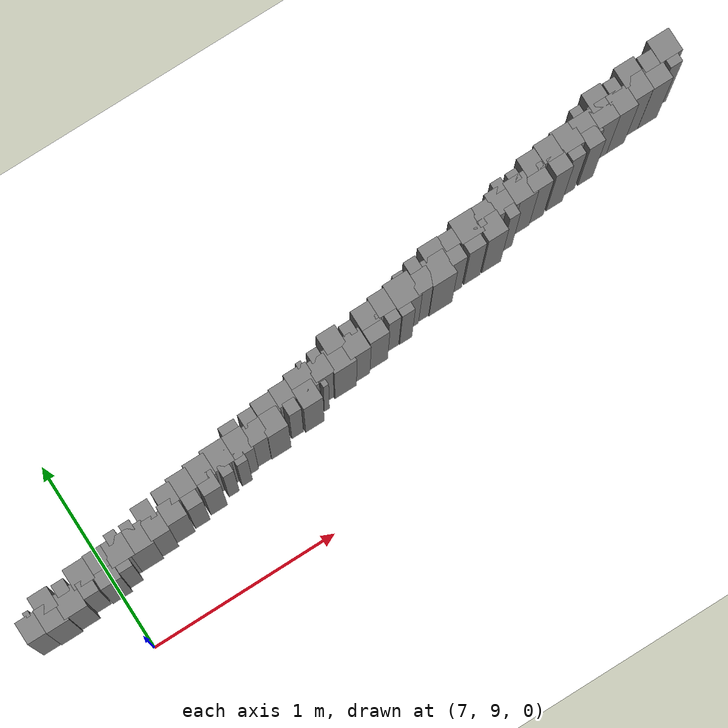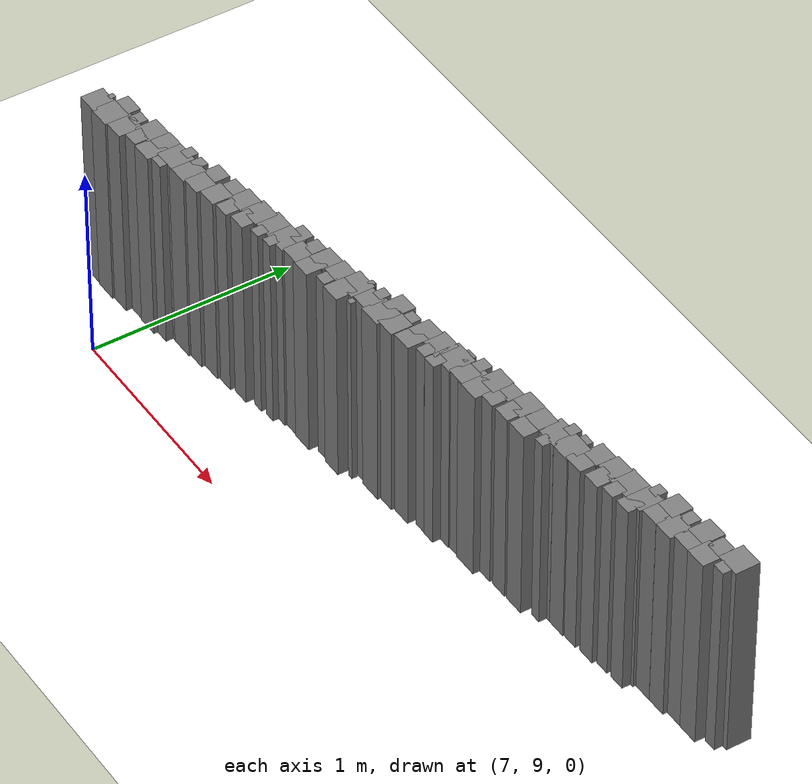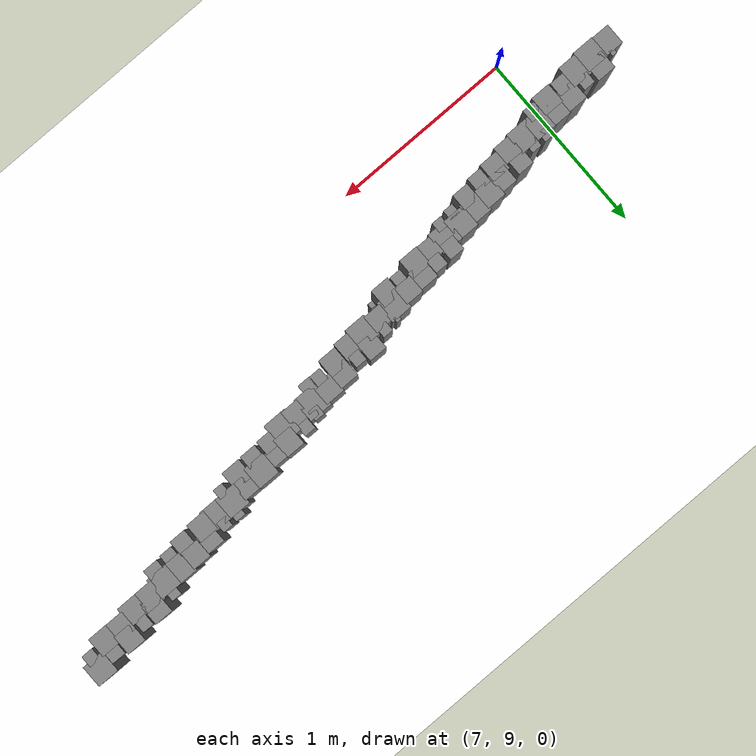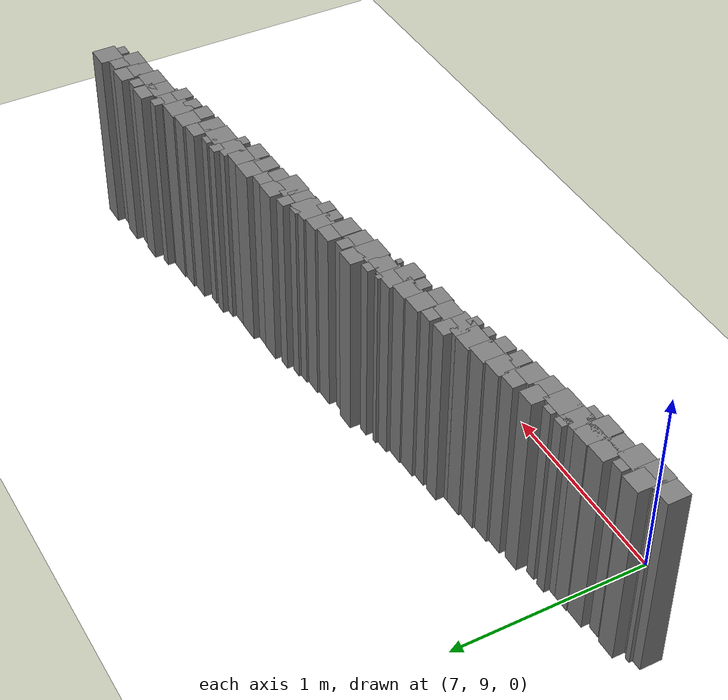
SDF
<sdf version="1.6">
 <world name="default">
  <model name="group_81">
   <pose>6.60 9.30 0.5 0 0 0</pose>
   <static>true</static>
   <link name="link">
    <collision name="collision">
     <geometry><box><size>0.1114520921337714 0.1114520921337714 1</size></box></geometry>
    </collision>
    <visual name="visual">
     <geometry><box><size>0.1114520921337714 0.1114520921337714 1</size></box></geometry>
     <material><ambient>0.5 0.5 0.5 1</ambient></material>
    </visual>
   </link>
  </model>
  <model name="group_82">
   <pose>6.61 9.36 0.5 0 0 0</pose>
   <static>true</static>
   <link name="link">
    <collision name="collision">
     <geometry><box><size>0.02814025255821355 0.02814025255821355 1</size></box></geometry>
    </collision>
    <visual name="visual">
     <geometry><box><size>0.02814025255821355 0.02814025255821355 1</size></box></geometry>
     <material><ambient>0.5 0.5 0.5 1</ambient></material>
    </visual>
   </link>
  </model>
  <model name="group_83">
   <pose>6.70 9.30 0.5 0 0 0</pose>
   <static>true</static>
   <link name="link">
    <collision name="collision">
     <geometry><box><size>0.11884310777185612 0.11884310777185612 1</size></box></geometry>
    </collision>
    <visual name="visual">
     <geometry><box><size>0.11884310777185612 0.11884310777185612 1</size></box></geometry>
     <material><ambient>0.5 0.5 0.5 1</ambient></material>
    </visual>
   </link>
  </model>
  <model name="group_84">
   <pose>6.70 9.37 0.5 0 0 0</pose>
   <static>true</static>
   <link name="link">
    <collision name="collision">
     <geometry><box><size>0.10288911944020827 0.10288911944020827 1</size></box></geometry>
    </collision>
    <visual name="visual">
     <geometry><box><size>0.10288911944020827 0.10288911944020827 1</size></box></geometry>
     <material><ambient>0.5 0.5 0.5 1</ambient></material>
    </visual>
   </link>
  </model>
  <model name="group_89">
   <pose>6.80 9.31 0.5 0 0 0</pose>
   <static>true</static>
   <link name="link">
    <collision name="collision">
     <geometry><box><size>0.12039171518391106 0.12039171518391106 1</size></box></geometry>
    </collision>
    <visual name="visual">
     <geometry><box><size>0.12039171518391106 0.12039171518391106 1</size></box></geometry>
     <material><ambient>0.5 0.5 0.5 1</ambient></material>
    </visual>
   </link>
  </model>
  <model name="group_90">
   <pose>6.80 9.38 0.5 0 0 0</pose>
   <static>true</static>
   <link name="link">
    <collision name="collision">
     <geometry><box><size>0.06413786030771819 0.06413786030771819 1</size></box></geometry>
    </collision>
    <visual name="visual">
     <geometry><box><size>0.06413786030771819 0.06413786030771819 1</size></box></geometry>
     <material><ambient>0.5 0.5 0.5 1</ambient></material>
    </visual>
   </link>
  </model>
  <model name="group_92">
   <pose>6.90 9.39 0.5 0 0 0</pose>
   <static>true</static>
   <link name="link">
    <collision name="collision">
     <geometry><box><size>0.10782127490802769 0.10782127490802769 1</size></box></geometry>
    </collision>
    <visual name="visual">
     <geometry><box><size>0.10782127490802769 0.10782127490802769 1</size></box></geometry>
     <material><ambient>0.5 0.5 0.5 1</ambient></material>
    </visual>
   </link>
  </model>
  <model name="group_95">
   <pose>6.90 9.32 0.5 0 0 0</pose>
   <static>true</static>
   <link name="link">
    <collision name="collision">
     <geometry><box><size>0.07960863723841166 0.07960863723841166 1</size></box></geometry>
    </collision>
    <visual name="visual">
     <geometry><box><size>0.07960863723841166 0.07960863723841166 1</size></box></geometry>
     <material><ambient>0.5 0.5 0.5 1</ambient></material>
    </visual>
   </link>
  </model>
  <model name="group_97">
   <pose>7.00 9.33 0.5 0 0 0</pose>
   <static>true</static>
   <link name="link">
    <collision name="collision">
     <geometry><box><size>0.10782127490802607 0.10782127490802607 1</size></box></geometry>
    </collision>
    <visual name="visual">
     <geometry><box><size>0.10782127490802607 0.10782127490802607 1</size></box></geometry>
     <material><ambient>0.5 0.5 0.5 1</ambient></material>
    </visual>
   </link>
  </model>
  <model name="group_98">
   <pose>7.00 9.40 0.5 0 0 0</pose>
   <static>true</static>
   <link name="link">
    <collision name="collision">
     <geometry><box><size>0.0983825120287442 0.0983825120287442 1</size></box></geometry>
    </collision>
    <visual name="visual">
     <geometry><box><size>0.0983825120287442 0.0983825120287442 1</size></box></geometry>
     <material><ambient>0.5 0.5 0.5 1</ambient></material>
    </visual>
   </link>
  </model>
  <model name="group_100">
   <pose>7.10 9.39 0.5 0 0 0</pose>
   <static>true</static>
   <link name="link">
    <collision name="collision">
     <geometry><box><size>0.11898060602917175 0.11898060602917175 1</size></box></geometry>
    </collision>
    <visual name="visual">
     <geometry><box><size>0.11898060602917175 0.11898060602917175 1</size></box></geometry>
     <material><ambient>0.5 0.5 0.5 1</ambient></material>
    </visual>
   </link>
  </model>
  <model name="group_103">
   <pose>7.09 9.33 0.5 0 0 0</pose>
   <static>true</static>
   <link name="link">
    <collision name="collision">
     <geometry><box><size>0.07012024655144619 0.07012024655144619 1</size></box></geometry>
    </collision>
    <visual name="visual">
     <geometry><box><size>0.07012024655144619 0.07012024655144619 1</size></box></geometry>
     <material><ambient>0.5 0.5 0.5 1</ambient></material>
    </visual>
   </link>
  </model>
  <model name="group_104">
   <pose>7.11 9.45 0.5 0 0 0</pose>
   <static>true</static>
   <link name="link">
    <collision name="collision">
     <geometry><box><size>0.0562805051164271 0.0562805051164271 1</size></box></geometry>
    </collision>
    <visual name="visual">
     <geometry><box><size>0.0562805051164271 0.0562805051164271 1</size></box></geometry>
     <material><ambient>0.5 0.5 0.5 1</ambient></material>
    </visual>
   </link>
  </model>
  <model name="group_105">
   <pose>7.16 9.33 0.5 0 0 0</pose>
   <static>true</static>
   <link name="link">
    <collision name="collision"><geometry><box><size>0.0 0.0 1</size></box></geometry></collision>
    <visual name="visual">
     <geometry><box><size>0.0 0.0 1</size></box></geometry>
     <material><ambient>0.5 0.5 0.5 1</ambient></material>
    </visual>
   </link>
  </model>
  <model name="group_106">
   <pose>7.20 9.39 0.5 0 0 0</pose>
   <static>true</static>
   <link name="link">
    <collision name="collision">
     <geometry><box><size>0.11941295585761501 0.11941295585761501 1</size></box></geometry>
    </collision>
    <visual name="visual">
     <geometry><box><size>0.11941295585761501 0.11941295585761501 1</size></box></geometry>
     <material><ambient>0.5 0.5 0.5 1</ambient></material>
    </visual>
   </link>
  </model>
  <model name="group_107">
   <pose>7.19 9.45 0.5 0 0 0</pose>
   <static>true</static>
   <link name="link">
    <collision name="collision">
     <geometry><box><size>0.0562805051164271 0.0562805051164271 1</size></box></geometry>
    </collision>
    <visual name="visual">
     <geometry><box><size>0.0562805051164271 0.0562805051164271 1</size></box></geometry>
     <material><ambient>0.5 0.5 0.5 1</ambient></material>
    </visual>
   </link>
  </model>
  <model name="group_110">
   <pose>7.29 9.47 0.5 0 0 0</pose>
   <static>true</static>
   <link name="link">
    <collision name="collision">
     <geometry><box><size>0.09070112511455337 0.09070112511455337 1</size></box></geometry>
    </collision>
    <visual name="visual">
     <geometry><box><size>0.09070112511455337 0.09070112511455337 1</size></box></geometry>
     <material><ambient>0.5 0.5 0.5 1</ambient></material>
    </visual>
   </link>
  </model>
  <model name="group_113">
   <pose>7.30 9.39 0.5 0 0 0</pose>
   <static>true</static>
   <link name="link">
    <collision name="collision">
     <geometry><box><size>0.09919226406566706 0.09919226406566706 1</size></box></geometry>
    </collision>
    <visual name="visual">
     <geometry><box><size>0.09919226406566706 0.09919226406566706 1</size></box></geometry>
     <material><ambient>0.5 0.5 0.5 1</ambient></material>
    </visual>
   </link>
  </model>
  <model name="group_114">
   <pose>7.40 9.41 0.5 0 0 0</pose>
   <static>true</static>
   <link name="link">
    <collision name="collision">
     <geometry><box><size>0.10297681291020339 0.10297681291020339 1</size></box></geometry>
    </collision>
    <visual name="visual">
     <geometry><box><size>0.10297681291020339 0.10297681291020339 1</size></box></geometry>
     <material><ambient>0.5 0.5 0.5 1</ambient></material>
    </visual>
   </link>
  </model>
  <model name="group_115">
   <pose>7.41 9.48 0.5 0 0 0</pose>
   <static>true</static>
   <link name="link">
    <collision name="collision">
     <geometry><box><size>0.09714779415188261 0.09714779415188261 1</size></box></geometry>
    </collision>
    <visual name="visual">
     <geometry><box><size>0.09714779415188261 0.09714779415188261 1</size></box></geometry>
     <material><ambient>0.5 0.5 0.5 1</ambient></material>
    </visual>
   </link>
  </model>
  <model name="group_118">
   <pose>7.50 9.49 0.5 0 0 0</pose>
   <static>true</static>
   <link name="link">
    <collision name="collision">
     <geometry><box><size>0.1064746104697804 0.1064746104697804 1</size></box></geometry>
    </collision>
    <visual name="visual">
     <geometry><box><size>0.1064746104697804 0.1064746104697804 1</size></box></geometry>
     <material><ambient>0.5 0.5 0.5 1</ambient></material>
    </visual>
   </link>
  </model>
  <model name="group_121">
   <pose>7.50 9.41 0.5 0 0 0</pose>
   <static>true</static>
   <link name="link">
    <collision name="collision">
     <geometry><box><size>0.08105785199990259 0.08105785199990259 1</size></box></geometry>
    </collision>
    <visual name="visual">
     <geometry><box><size>0.08105785199990259 0.08105785199990259 1</size></box></geometry>
     <material><ambient>0.5 0.5 0.5 1</ambient></material>
    </visual>
   </link>
  </model>
  <model name="group_122">
   <pose>7.60 9.43 0.5 0 0 0</pose>
   <static>true</static>
   <link name="link">
    <collision name="collision">
     <geometry><box><size>0.09070112511455398 0.09070112511455398 1</size></box></geometry>
    </collision>
    <visual name="visual">
     <geometry><box><size>0.09070112511455398 0.09070112511455398 1</size></box></geometry>
     <material><ambient>0.5 0.5 0.5 1</ambient></material>
    </visual>
   </link>
  </model>
  <model name="group_123">
   <pose>7.60 9.50 0.5 0 0 0</pose>
   <static>true</static>
   <link name="link">
    <collision name="collision">
     <geometry><box><size>0.11145209213377237 0.11145209213377237 1</size></box></geometry>
    </collision>
    <visual name="visual">
     <geometry><box><size>0.11145209213377237 0.11145209213377237 1</size></box></geometry>
     <material><ambient>0.5 0.5 0.5 1</ambient></material>
    </visual>
   </link>
  </model>
  <model name="group_126">
   <pose>7.70 9.51 0.5 0 0 0</pose>
   <static>true</static>
   <link name="link">
    <collision name="collision">
     <geometry><box><size>0.1188431077718556 0.1188431077718556 1</size></box></geometry>
    </collision>
    <visual name="visual">
     <geometry><box><size>0.1188431077718556 0.1188431077718556 1</size></box></geometry>
     <material><ambient>0.5 0.5 0.5 1</ambient></material>
    </visual>
   </link>
  </model>
  <model name="group_128">
   <pose>7.70 9.44 0.5 0 0 0</pose>
   <static>true</static>
   <link name="link">
    <collision name="collision">
     <geometry><box><size>0.056280505116427 0.056280505116427 1</size></box></geometry>
    </collision>
    <visual name="visual">
     <geometry><box><size>0.056280505116427 0.056280505116427 1</size></box></geometry>
     <material><ambient>0.5 0.5 0.5 1</ambient></material>
    </visual>
   </link>
  </model>
  <model name="group_130">
   <pose>7.74 9.57 0.5 0 0 0</pose>
   <static>true</static>
   <link name="link">
    <collision name="collision"><geometry><box><size>0.0 0.0 1</size></box></geometry></collision>
    <visual name="visual">
     <geometry><box><size>0.0 0.0 1</size></box></geometry>
     <material><ambient>0.5 0.5 0.5 1</ambient></material>
    </visual>
   </link>
  </model>
  <model name="group_131">
   <pose>7.78 9.45 0.5 0 0 0</pose>
   <static>true</static>
   <link name="link">
    <collision name="collision">
     <geometry><box><size>0.056280505116428875 0.056280505116428875 1</size></box></geometry>
    </collision>
    <visual name="visual">
     <geometry><box><size>0.056280505116428875 0.056280505116428875 1</size></box></geometry>
     <material><ambient>0.5 0.5 0.5 1</ambient></material>
    </visual>
   </link>
  </model>
  <model name="group_132">
   <pose>7.80 9.51 0.5 0 0 0</pose>
   <static>true</static>
   <link name="link">
    <collision name="collision">
     <geometry><box><size>0.11941295585761733 0.11941295585761733 1</size></box></geometry>
    </collision>
    <visual name="visual">
     <geometry><box><size>0.11941295585761733 0.11941295585761733 1</size></box></geometry>
     <material><ambient>0.5 0.5 0.5 1</ambient></material>
    </visual>
   </link>
  </model>
  <model name="group_133">
   <pose>7.81 9.57 0.5 0 0 0</pose>
   <static>true</static>
   <link name="link">
    <collision name="collision">
     <geometry><box><size>0.08442075767464055 0.08442075767464055 1</size></box></geometry>
    </collision>
    <visual name="visual">
     <geometry><box><size>0.08442075767464055 0.08442075767464055 1</size></box></geometry>
     <material><ambient>0.5 0.5 0.5 1</ambient></material>
    </visual>
   </link>
  </model>
  <model name="group_136">
   <pose>7.90 9.51 0.5 0 0 0</pose>
   <static>true</static>
   <link name="link">
    <collision name="collision">
     <geometry><box><size>0.09919226406567094 0.09919226406567094 1</size></box></geometry>
    </collision>
    <visual name="visual">
     <geometry><box><size>0.09919226406567094 0.09919226406567094 1</size></box></geometry>
     <material><ambient>0.5 0.5 0.5 1</ambient></material>
    </visual>
   </link>
  </model>
  <model name="group_137">
   <pose>7.91 9.58 0.5 0 0 0</pose>
   <static>true</static>
   <link name="link">
    <collision name="collision">
     <geometry><box><size>0.0725609000916443 0.0725609000916443 1</size></box></geometry>
    </collision>
    <visual name="visual">
     <geometry><box><size>0.0725609000916443 0.0725609000916443 1</size></box></geometry>
     <material><ambient>0.5 0.5 0.5 1</ambient></material>
    </visual>
   </link>
  </model>
  <model name="group_140">
   <pose>7.99 9.51 0.5 0 0 0</pose>
   <static>true</static>
   <link name="link">
    <collision name="collision">
     <geometry><box><size>0.10782127490802769 0.10782127490802769 1</size></box></geometry>
    </collision>
    <visual name="visual">
     <geometry><box><size>0.10782127490802769 0.10782127490802769 1</size></box></geometry>
     <material><ambient>0.5 0.5 0.5 1</ambient></material>
    </visual>
   </link>
  </model>
  <model name="group_141">
   <pose>8.00 9.58 0.5 0 0 0</pose>
   <static>true</static>
   <link name="link">
    <collision name="collision">
     <geometry><box><size>0.10297681291020186 0.10297681291020186 1</size></box></geometry>
    </collision>
    <visual name="visual">
     <geometry><box><size>0.10297681291020186 0.10297681291020186 1</size></box></geometry>
     <material><ambient>0.5 0.5 0.5 1</ambient></material>
    </visual>
   </link>
  </model>
  <model name="group_144">
   <pose>8.10 9.52 0.5 0 0 0</pose>
   <static>true</static>
   <link name="link">
    <collision name="collision">
     <geometry><box><size>0.06413786030771833 0.06413786030771833 1</size></box></geometry>
    </collision>
    <visual name="visual">
     <geometry><box><size>0.06413786030771833 0.06413786030771833 1</size></box></geometry>
     <material><ambient>0.5 0.5 0.5 1</ambient></material>
    </visual>
   </link>
  </model>
  <model name="group_145">
   <pose>8.10 9.59 0.5 0 0 0</pose>
   <static>true</static>
   <link name="link">
    <collision name="collision">
     <geometry><box><size>0.0991922640656737 0.0991922640656737 1</size></box></geometry>
    </collision>
    <visual name="visual">
     <geometry><box><size>0.0991922640656737 0.0991922640656737 1</size></box></geometry>
     <material><ambient>0.5 0.5 0.5 1</ambient></material>
    </visual>
   </link>
  </model>
  <model name="group_148">
   <pose>8.19 9.53 0.5 0 0 0</pose>
   <static>true</static>
   <link name="link">
    <collision name="collision">
     <geometry><box><size>0.10288911944021224 0.10288911944021224 1</size></box></geometry>
    </collision>
    <visual name="visual">
     <geometry><box><size>0.10288911944021224 0.10288911944021224 1</size></box></geometry>
     <material><ambient>0.5 0.5 0.5 1</ambient></material>
    </visual>
   </link>
  </model>
  <model name="group_149">
   <pose>8.20 9.60 0.5 0 0 0</pose>
   <static>true</static>
   <link name="link">
    <collision name="collision">
     <geometry><box><size>0.11941295585761501 0.11941295585761501 1</size></box></geometry>
    </collision>
    <visual name="visual">
     <geometry><box><size>0.11941295585761501 0.11941295585761501 1</size></box></geometry>
     <material><ambient>0.5 0.5 0.5 1</ambient></material>
    </visual>
   </link>
  </model>
  <model name="group_152">
   <pose>8.23 9.66 0.5 0 0 0</pose>
   <static>true</static>
   <link name="link">
    <collision name="collision">
     <geometry><box><size>0.02814025255821345 0.02814025255821345 1</size></box></geometry>
    </collision>
    <visual name="visual">
     <geometry><box><size>0.02814025255821345 0.02814025255821345 1</size></box></geometry>
     <material><ambient>0.5 0.5 0.5 1</ambient></material>
    </visual>
   </link>
  </model>
  <model name="group_153">
   <pose>8.28 9.53 0.5 0 0 0</pose>
   <static>true</static>
   <link name="link">
    <collision name="collision">
     <geometry><box><size>0.02814025255821345 0.02814025255821345 1</size></box></geometry>
    </collision>
    <visual name="visual">
     <geometry><box><size>0.02814025255821345 0.02814025255821345 1</size></box></geometry>
     <material><ambient>0.5 0.5 0.5 1</ambient></material>
    </visual>
   </link>
  </model>
  <model name="group_154">
   <pose>8.30 9.60 0.5 0 0 0</pose>
   <static>true</static>
   <link name="link">
    <collision name="collision">
     <geometry><box><size>0.09919226406566595 0.09919226406566595 1</size></box></geometry>
    </collision>
    <visual name="visual">
     <geometry><box><size>0.09919226406566595 0.09919226406566595 1</size></box></geometry>
     <material><ambient>0.5 0.5 0.5 1</ambient></material>
    </visual>
   </link>
  </model>
  <model name="group_155">
   <pose>8.31 9.66 0.5 0 0 0</pose>
   <static>true</static>
   <link name="link">
    <collision name="collision">
     <geometry><box><size>0.0562805051164271 0.0562805051164271 1</size></box></geometry>
    </collision>
    <visual name="visual">
     <geometry><box><size>0.0562805051164271 0.0562805051164271 1</size></box></geometry>
     <material><ambient>0.5 0.5 0.5 1</ambient></material>
    </visual>
   </link>
  </model>
  <model name="group_158">
   <pose>8.40 9.60 0.5 0 0 0</pose>
   <static>true</static>
   <link name="link">
    <collision name="collision">
     <geometry><box><size>0.11941295585761537 0.11941295585761537 1</size></box></geometry>
    </collision>
    <visual name="visual">
     <geometry><box><size>0.11941295585761537 0.11941295585761537 1</size></box></geometry>
     <material><ambient>0.5 0.5 0.5 1</ambient></material>
    </visual>
   </link>
  </model>
  <model name="group_159">
   <pose>8.41 9.68 0.5 0 0 0</pose>
   <static>true</static>
   <link name="link">
    <collision name="collision">
     <geometry><box><size>0.10114093471775756 0.10114093471775756 1</size></box></geometry>
    </collision>
    <visual name="visual">
     <geometry><box><size>0.10114093471775756 0.10114093471775756 1</size></box></geometry>
     <material><ambient>0.5 0.5 0.5 1</ambient></material>
    </visual>
   </link>
  </model>
  <model name="group_162">
   <pose>8.49 9.61 0.5 0 0 0</pose>
   <static>true</static>
   <link name="link">
    <collision name="collision">
     <geometry><box><size>0.10881582679461872 0.10881582679461872 1</size></box></geometry>
    </collision>
    <visual name="visual">
     <geometry><box><size>0.10881582679461872 0.10881582679461872 1</size></box></geometry>
     <material><ambient>0.5 0.5 0.5 1</ambient></material>
    </visual>
   </link>
  </model>
  <model name="group_163">
   <pose>8.50 9.68 0.5 0 0 0</pose>
   <static>true</static>
   <link name="link">
    <collision name="collision">
     <geometry><box><size>0.0641378603077213 0.0641378603077213 1</size></box></geometry>
    </collision>
    <visual name="visual">
     <geometry><box><size>0.0641378603077213 0.0641378603077213 1</size></box></geometry>
     <material><ambient>0.5 0.5 0.5 1</ambient></material>
    </visual>
   </link>
  </model>
  <model name="group_166">
   <pose>8.60 9.62 0.5 0 0 0</pose>
   <static>true</static>
   <link name="link">
    <collision name="collision">
     <geometry><box><size>0.10297681291020215 0.10297681291020215 1</size></box></geometry>
    </collision>
    <visual name="visual">
     <geometry><box><size>0.10297681291020215 0.10297681291020215 1</size></box></geometry>
     <material><ambient>0.5 0.5 0.5 1</ambient></material>
    </visual>
   </link>
  </model>
  <model name="group_167">
   <pose>8.60 9.69 0.5 0 0 0</pose>
   <static>true</static>
   <link name="link">
    <collision name="collision">
     <geometry><box><size>0.1029768129102052 0.1029768129102052 1</size></box></geometry>
    </collision>
    <visual name="visual">
     <geometry><box><size>0.1029768129102052 0.1029768129102052 1</size></box></geometry>
     <material><ambient>0.5 0.5 0.5 1</ambient></material>
    </visual>
   </link>
  </model>
  <model name="group_170">
   <pose>8.70 9.63 0.5 0 0 0</pose>
   <static>true</static>
   <link name="link">
    <collision name="collision">
     <geometry><box><size>0.06413786030771658 0.06413786030771658 1</size></box></geometry>
    </collision>
    <visual name="visual">
     <geometry><box><size>0.06413786030771658 0.06413786030771658 1</size></box></geometry>
     <material><ambient>0.5 0.5 0.5 1</ambient></material>
    </visual>
   </link>
  </model>
  <model name="group_171">
   <pose>8.70 9.70 0.5 0 0 0</pose>
   <static>true</static>
   <link name="link">
    <collision name="collision">
     <geometry><box><size>0.10881582679461194 0.10881582679461194 1</size></box></geometry>
    </collision>
    <visual name="visual">
     <geometry><box><size>0.10881582679461194 0.10881582679461194 1</size></box></geometry>
     <material><ambient>0.5 0.5 0.5 1</ambient></material>
    </visual>
   </link>
  </model>
  <model name="group_174">
   <pose>8.77 9.63 0.5 0 0 0</pose>
   <static>true</static>
   <link name="link">
    <collision name="collision">
     <geometry><box><size>0.06837419248851186 0.06837419248851186 1</size></box></geometry>
    </collision>
    <visual name="visual">
     <geometry><box><size>0.06837419248851186 0.06837419248851186 1</size></box></geometry>
     <material><ambient>0.5 0.5 0.5 1</ambient></material>
    </visual>
   </link>
  </model>
  <model name="group_175">
   <pose>8.80 9.70 0.5 0 0 0</pose>
   <static>true</static>
   <link name="link">
    <collision name="collision">
     <geometry><box><size>0.13063877430325058 0.13063877430325058 1</size></box></geometry>
    </collision>
    <visual name="visual">
     <geometry><box><size>0.13063877430325058 0.13063877430325058 1</size></box></geometry>
     <material><ambient>0.5 0.5 0.5 1</ambient></material>
    </visual>
   </link>
  </model>
  <model name="group_176">
   <pose>8.82 9.75 0.5 0 0 0</pose>
   <static>true</static>
   <link name="link">
    <collision name="collision">
     <geometry><box><size>0.056280505116427 0.056280505116427 1</size></box></geometry>
    </collision>
    <visual name="visual">
     <geometry><box><size>0.056280505116427 0.056280505116427 1</size></box></geometry>
     <material><ambient>0.5 0.5 0.5 1</ambient></material>
    </visual>
   </link>
  </model>
  <model name="group_179">
   <pose>8.90 9.69 0.5 0 0 0</pose>
   <static>true</static>
   <link name="link">
    <collision name="collision">
     <geometry><box><size>0.09919226406566595 0.09919226406566595 1</size></box></geometry>
    </collision>
    <visual name="visual">
     <geometry><box><size>0.09919226406566595 0.09919226406566595 1</size></box></geometry>
     <material><ambient>0.5 0.5 0.5 1</ambient></material>
    </visual>
   </link>
  </model>
  <model name="group_180">
   <pose>8.90 9.77 0.5 0 0 0</pose>
   <static>true</static>
   <link name="link">
    <collision name="collision">
     <geometry><box><size>0.06413786030771658 0.06413786030771658 1</size></box></geometry>
    </collision>
    <visual name="visual">
     <geometry><box><size>0.06413786030771658 0.06413786030771658 1</size></box></geometry>
     <material><ambient>0.5 0.5 0.5 1</ambient></material>
    </visual>
   </link>
  </model>
  <model name="group_183">
   <pose>8.99 9.70 0.5 0 0 0</pose>
   <static>true</static>
   <link name="link">
    <collision name="collision">
     <geometry><box><size>0.12787992062458214 0.12787992062458214 1</size></box></geometry>
    </collision>
    <visual name="visual">
     <geometry><box><size>0.12787992062458214 0.12787992062458214 1</size></box></geometry>
     <material><ambient>0.5 0.5 0.5 1</ambient></material>
    </visual>
   </link>
  </model>
  <model name="group_184">
   <pose>9.01 9.77 0.5 0 0 0</pose>
   <static>true</static>
   <link name="link">
    <collision name="collision">
     <geometry><box><size>0.10614484965120732 0.10614484965120732 1</size></box></geometry>
    </collision>
    <visual name="visual">
     <geometry><box><size>0.10614484965120732 0.10614484965120732 1</size></box></geometry>
     <material><ambient>0.5 0.5 0.5 1</ambient></material>
    </visual>
   </link>
  </model>
  <model name="group_187">
   <pose>9.09 9.71 0.5 0 0 0</pose>
   <static>true</static>
   <link name="link">
    <collision name="collision">
     <geometry><box><size>0.07960863723841204 0.07960863723841204 1</size></box></geometry>
    </collision>
    <visual name="visual">
     <geometry><box><size>0.07960863723841204 0.07960863723841204 1</size></box></geometry>
     <material><ambient>0.5 0.5 0.5 1</ambient></material>
    </visual>
   </link>
  </model>
  <model name="group_188">
   <pose>9.10 9.78 0.5 0 0 0</pose>
   <static>true</static>
   <link name="link">
    <collision name="collision">
     <geometry><box><size>0.07960863723840665 0.07960863723840665 1</size></box></geometry>
    </collision>
    <visual name="visual">
     <geometry><box><size>0.07960863723840665 0.07960863723840665 1</size></box></geometry>
     <material><ambient>0.5 0.5 0.5 1</ambient></material>
    </visual>
   </link>
  </model>
  <model name="group_191">
   <pose>9.19 9.72 0.5 0 0 0</pose>
   <static>true</static>
   <link name="link">
    <collision name="collision">
     <geometry><box><size>0.09070112511455398 0.09070112511455398 1</size></box></geometry>
    </collision>
    <visual name="visual">
     <geometry><box><size>0.09070112511455398 0.09070112511455398 1</size></box></geometry>
     <material><ambient>0.5 0.5 0.5 1</ambient></material>
    </visual>
   </link>
  </model>
  <model name="group_192">
   <pose>9.20 9.79 0.5 0 0 0</pose>
   <static>true</static>
   <link name="link">
    <collision name="collision">
     <geometry><box><size>0.12154725287973682 0.12154725287973682 1</size></box></geometry>
    </collision>
    <visual name="visual">
     <geometry><box><size>0.12154725287973682 0.12154725287973682 1</size></box></geometry>
     <material><ambient>0.5 0.5 0.5 1</ambient></material>
    </visual>
   </link>
  </model>
  <model name="group_195">
   <pose>9.30 9.73 0.5 0 0 0</pose>
   <static>true</static>
   <link name="link">
    <collision name="collision">
     <geometry><box><size>0.10632897044420045 0.10632897044420045 1</size></box></geometry>
    </collision>
    <visual name="visual">
     <geometry><box><size>0.10632897044420045 0.10632897044420045 1</size></box></geometry>
     <material><ambient>0.5 0.5 0.5 1</ambient></material>
    </visual>
   </link>
  </model>
  <model name="group_196">
   <pose>9.30 9.80 0.5 0 0 0</pose>
   <static>true</static>
   <link name="link">
    <collision name="collision">
     <geometry><box><size>0.09919226406566871 0.09919226406566871 1</size></box></geometry>
    </collision>
    <visual name="visual">
     <geometry><box><size>0.09919226406566871 0.09919226406566871 1</size></box></geometry>
     <material><ambient>0.5 0.5 0.5 1</ambient></material>
    </visual>
   </link>
  </model>
  <model name="group_199">
   <pose>9.40 9.81 0.5 0 0 0</pose>
   <static>true</static>
   <link name="link">
    <collision name="collision">
     <geometry><box><size>0.11941295585761268 0.11941295585761268 1</size></box></geometry>
    </collision>
    <visual name="visual">
     <geometry><box><size>0.11941295585761268 0.11941295585761268 1</size></box></geometry>
     <material><ambient>0.5 0.5 0.5 1</ambient></material>
    </visual>
   </link>
  </model>
  <model name="group_200">
   <pose>9.41 9.74 0.5 0 0 0</pose>
   <static>true</static>
   <link name="link">
    <collision name="collision">
     <geometry><box><size>0.0562805051164271 0.0562805051164271 1</size></box></geometry>
    </collision>
    <visual name="visual">
     <geometry><box><size>0.0562805051164271 0.0562805051164271 1</size></box></geometry>
     <material><ambient>0.5 0.5 0.5 1</ambient></material>
    </visual>
   </link>
  </model>
  <model name="group_201">
   <pose>9.42 9.87 0.5 0 0 0</pose>
   <static>true</static>
   <link name="link">
    <collision name="collision">
     <geometry><box><size>0.0562805051164271 0.0562805051164271 1</size></box></geometry>
    </collision>
    <visual name="visual">
     <geometry><box><size>0.0562805051164271 0.0562805051164271 1</size></box></geometry>
     <material><ambient>0.5 0.5 0.5 1</ambient></material>
    </visual>
   </link>
  </model>
  <model name="group_204">
   <pose>9.46 9.74 0.5 0 0 0</pose>
   <static>true</static>
   <link name="link">
    <collision name="collision"><geometry><box><size>0.0 0.0 1</size></box></geometry></collision>
    <visual name="visual">
     <geometry><box><size>0.0 0.0 1</size></box></geometry>
     <material><ambient>0.5 0.5 0.5 1</ambient></material>
    </visual>
   </link>
  </model>
  <model name="group_205">
   <pose>9.50 9.81 0.5 0 0 0</pose>
   <static>true</static>
   <link name="link">
    <collision name="collision">
     <geometry><box><size>0.11884310777185465 0.11884310777185465 1</size></box></geometry>
    </collision>
    <visual name="visual">
     <geometry><box><size>0.11884310777185465 0.11884310777185465 1</size></box></geometry>
     <material><ambient>0.5 0.5 0.5 1</ambient></material>
    </visual>
   </link>
  </model>
  <model name="group_206">
   <pose>9.50 9.87 0.5 0 0 0</pose>
   <static>true</static>
   <link name="link">
    <collision name="collision">
     <geometry><box><size>0.0562805051164271 0.0562805051164271 1</size></box></geometry>
    </collision>
    <visual name="visual">
     <geometry><box><size>0.0562805051164271 0.0562805051164271 1</size></box></geometry>
     <material><ambient>0.5 0.5 0.5 1</ambient></material>
    </visual>
   </link>
  </model>
  <model name="group_209">
   <pose>9.59 9.81 0.5 0 0 0</pose>
   <static>true</static>
   <link name="link">
    <collision name="collision">
     <geometry><box><size>0.10720809573338415 0.10720809573338415 1</size></box></geometry>
    </collision>
    <visual name="visual">
     <geometry><box><size>0.10720809573338415 0.10720809573338415 1</size></box></geometry>
     <material><ambient>0.5 0.5 0.5 1</ambient></material>
    </visual>
   </link>
  </model>
  <model name="group_210">
   <pose>9.60 9.88 0.5 0 0 0</pose>
   <static>true</static>
   <link name="link">
    <collision name="collision">
     <geometry><box><size>0.09707727718031384 0.09707727718031384 1</size></box></geometry>
    </collision>
    <visual name="visual">
     <geometry><box><size>0.09707727718031384 0.09707727718031384 1</size></box></geometry>
     <material><ambient>0.5 0.5 0.5 1</ambient></material>
    </visual>
   </link>
  </model>
  <model name="group_213">
   <pose>9.71 9.81 0.5 0 0 0</pose>
   <static>true</static>
   <link name="link">
    <collision name="collision">
     <geometry><box><size>0.09070112511455061 0.09070112511455061 1</size></box></geometry>
    </collision>
    <visual name="visual">
     <geometry><box><size>0.09070112511455061 0.09070112511455061 1</size></box></geometry>
     <material><ambient>0.5 0.5 0.5 1</ambient></material>
    </visual>
   </link>
  </model>
  <model name="group_214">
   <pose>9.70 9.89 0.5 0 0 0</pose>
   <static>true</static>
   <link name="link">
    <collision name="collision">
     <geometry><box><size>0.10185609435833401 0.10185609435833401 1</size></box></geometry>
    </collision>
    <visual name="visual">
     <geometry><box><size>0.10185609435833401 0.10185609435833401 1</size></box></geometry>
     <material><ambient>0.5 0.5 0.5 1</ambient></material>
    </visual>
   </link>
  </model>
  <model name="group_217">
   <pose>9.80 9.89 0.5 0 0 0</pose>
   <static>true</static>
   <link name="link">
    <collision name="collision">
     <geometry><box><size>0.11941295585761537 0.11941295585761537 1</size></box></geometry>
    </collision>
    <visual name="visual">
     <geometry><box><size>0.11941295585761537 0.11941295585761537 1</size></box></geometry>
     <material><ambient>0.5 0.5 0.5 1</ambient></material>
    </visual>
   </link>
  </model>
  <model name="group_218">
   <pose>9.80 9.82 0.5 0 0 0</pose>
   <static>true</static>
   <link name="link">
    <collision name="collision">
     <geometry><box><size>0.07280795788523434 0.07280795788523434 1</size></box></geometry>
    </collision>
    <visual name="visual">
     <geometry><box><size>0.07280795788523434 0.07280795788523434 1</size></box></geometry>
     <material><ambient>0.5 0.5 0.5 1</ambient></material>
    </visual>
   </link>
  </model>
  <model name="group_221">
   <pose>9.90 9.83 0.5 0 0 0</pose>
   <static>true</static>
   <link name="link">
    <collision name="collision">
     <geometry><box><size>0.08442075767464065 0.08442075767464065 1</size></box></geometry>
    </collision>
    <visual name="visual">
     <geometry><box><size>0.08442075767464065 0.08442075767464065 1</size></box></geometry>
     <material><ambient>0.5 0.5 0.5 1</ambient></material>
    </visual>
   </link>
  </model>
  <model name="group_222">
   <pose>9.90 9.89 0.5 0 0 0</pose>
   <static>true</static>
   <link name="link">
    <collision name="collision">
     <geometry><box><size>0.1188431077718556 0.1188431077718556 1</size></box></geometry>
    </collision>
    <visual name="visual">
     <geometry><box><size>0.1188431077718556 0.1188431077718556 1</size></box></geometry>
     <material><ambient>0.5 0.5 0.5 1</ambient></material>
    </visual>
   </link>
  </model>
  <model name="group_223">
   <pose>9.90 9.96 0.5 0 0 0</pose>
   <static>true</static>
   <link name="link">
    <collision name="collision">
     <geometry><box><size>0.056280505116427 0.056280505116427 1</size></box></geometry>
    </collision>
    <visual name="visual">
     <geometry><box><size>0.056280505116427 0.056280505116427 1</size></box></geometry>
     <material><ambient>0.5 0.5 0.5 1</ambient></material>
    </visual>
   </link>
  </model>
  <model name="group_227">
   <pose>10.00 9.90 0.5 0 0 0</pose>
   <static>true</static>
   <link name="link">
    <collision name="collision">
     <geometry><box><size>0.1114520921337714 0.1114520921337714 1</size></box></geometry>
    </collision>
    <visual name="visual">
     <geometry><box><size>0.1114520921337714 0.1114520921337714 1</size></box></geometry>
     <material><ambient>0.5 0.5 0.5 1</ambient></material>
    </visual>
   </link>
  </model>
  <model name="group_228">
   <pose>10.01 9.97 0.5 0 0 0</pose>
   <static>true</static>
   <link name="link">
    <collision name="collision">
     <geometry><box><size>0.1028891194402118 0.1028891194402118 1</size></box></geometry>
    </collision>
    <visual name="visual">
     <geometry><box><size>0.1028891194402118 0.1028891194402118 1</size></box></geometry>
     <material><ambient>0.5 0.5 0.5 1</ambient></material>
    </visual>
   </link>
  </model>
  <model name="group_232">
   <pose>10.10 9.90 0.5 0 0 0</pose>
   <static>true</static>
   <link name="link">
    <collision name="collision">
     <geometry><box><size>0.1103226656488673 0.1103226656488673 1</size></box></geometry>
    </collision>
    <visual name="visual">
     <geometry><box><size>0.1103226656488673 0.1103226656488673 1</size></box></geometry>
     <material><ambient>0.5 0.5 0.5 1</ambient></material>
    </visual>
   </link>
  </model>
  <model name="group_233">
   <pose>10.10 9.98 0.5 0 0 0</pose>
   <static>true</static>
   <link name="link">
    <collision name="collision">
     <geometry><box><size>0.06413786030771658 0.06413786030771658 1</size></box></geometry>
    </collision>
    <visual name="visual">
     <geometry><box><size>0.06413786030771658 0.06413786030771658 1</size></box></geometry>
     <material><ambient>0.5 0.5 0.5 1</ambient></material>
    </visual>
   </link>
  </model>
  <model name="group_237">
   <pose>10.20 9.92 0.5 0 0 0</pose>
   <static>true</static>
   <link name="link">
    <collision name="collision">
     <geometry><box><size>0.1064746104697804 0.1064746104697804 1</size></box></geometry>
    </collision>
    <visual name="visual">
     <geometry><box><size>0.1064746104697804 0.1064746104697804 1</size></box></geometry>
     <material><ambient>0.5 0.5 0.5 1</ambient></material>
    </visual>
   </link>
  </model>
  <model name="group_238">
   <pose>10.20 9.99 0.5 0 0 0</pose>
   <static>true</static>
   <link name="link">
    <collision name="collision">
     <geometry><box><size>0.10782127490802139 0.10782127490802139 1</size></box></geometry>
    </collision>
    <visual name="visual">
     <geometry><box><size>0.10782127490802139 0.10782127490802139 1</size></box></geometry>
     <material><ambient>0.5 0.5 0.5 1</ambient></material>
    </visual>
   </link>
  </model>
  <model name="group_241">
   <pose>10.30 9.92 0.5 0 0 0</pose>
   <static>true</static>
   <link name="link">
    <collision name="collision">
     <geometry><box><size>0.1078212749080354 0.1078212749080354 1</size></box></geometry>
    </collision>
    <visual name="visual">
     <geometry><box><size>0.1078212749080354 0.1078212749080354 1</size></box></geometry>
     <material><ambient>0.5 0.5 0.5 1</ambient></material>
    </visual>
   </link>
  </model>
  <model name="group_242">
   <pose>10.30 9.99 0.5 0 0 0</pose>
   <static>true</static>
   <link name="link">
    <collision name="collision">
     <geometry><box><size>0.07960863723841204 0.07960863723841204 1</size></box></geometry>
    </collision>
    <visual name="visual">
     <geometry><box><size>0.07960863723841204 0.07960863723841204 1</size></box></geometry>
     <material><ambient>0.5 0.5 0.5 1</ambient></material>
    </visual>
   </link>
  </model>
  <model name="group_245">
   <pose>10.40 10.01 0.5 0 0 0</pose>
   <static>true</static>
   <link name="link">
    <collision name="collision">
     <geometry><box><size>0.11941295585761733 0.11941295585761733 1</size></box></geometry>
    </collision>
    <visual name="visual">
     <geometry><box><size>0.11941295585761733 0.11941295585761733 1</size></box></geometry>
     <material><ambient>0.5 0.5 0.5 1</ambient></material>
    </visual>
   </link>
  </model>
  <model name="group_246">
   <pose>10.40 9.94 0.5 0 0 0</pose>
   <static>true</static>
   <link name="link">
    <collision name="collision">
     <geometry><box><size>0.06413786030771806 0.06413786030771806 1</size></box></geometry>
    </collision>
    <visual name="visual">
     <geometry><box><size>0.06413786030771806 0.06413786030771806 1</size></box></geometry>
     <material><ambient>0.5 0.5 0.5 1</ambient></material>
    </visual>
   </link>
  </model>
  <model name="ground_plane">
   <static>true</static>
   <link name="link">
    <collision name="collision">
     <geometry><plane><normal>0 0 1</normal><size>100 100</size></plane></geometry>
    </collision>
    <visual name="visual">
     <geometry><plane><normal>0 0 1</normal><size>100 100</size></plane></geometry>
     <material><ambient>1 1 1 1</ambient></material>
    </visual>
   </link>
  </model>
 </world>
</sdf>
